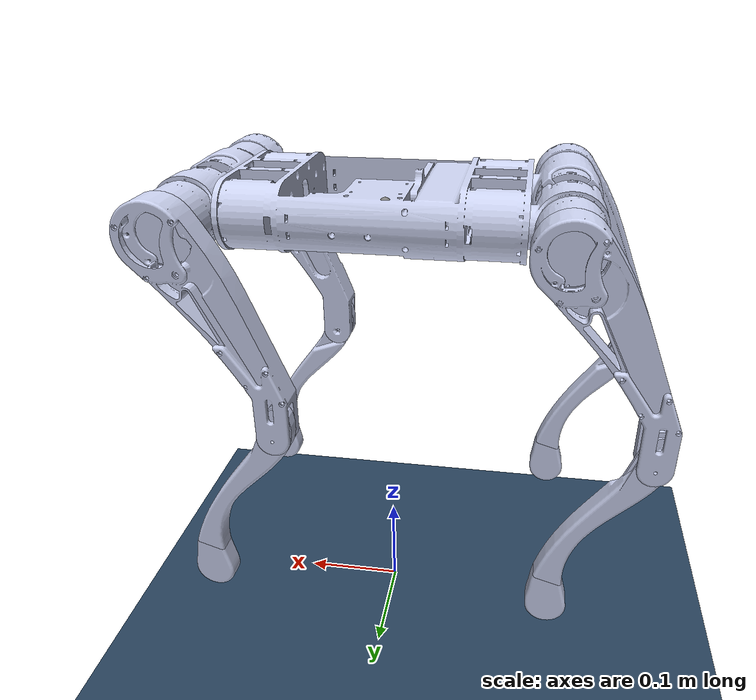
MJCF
<mujoco model="Little white scene">
  <include file="little_white_fix.xml"/>

  <statistic center="0 0 0.1" extent="0.8"/>

  <visual>
    <headlight diffuse="0.6 0.6 0.6" ambient="0.3 0.3 0.3" specular="0 0 0"/>
    <rgba haze="0.15 0.25 0.35 1"/>
    <global azimuth="-130" elevation="-20"/>
  </visual>

  <asset>
    <texture type="skybox" builtin="gradient" rgb1="0.3 0.5 0.7" rgb2="0 0 0" width="512" height="3072"/>
    <texture type="2d" name="groundplane" builtin="checker" mark="edge" rgb1="0.2 0.3 0.4" rgb2="0.1 0.2 0.3"
      markrgb="0.8 0.8 0.8" width="300" height="300"/>
    <material name="groundplane" texture="groundplane" texuniform="true" texrepeat="5 5" reflectance="0.2"/>
  </asset>

  <worldbody>
    <light pos="0 0 1.5" dir="0 0 -1" directional="true"/>
    <geom name="floor" size="0 0 0.05" type="plane" material="groundplane"/>

  </worldbody>
</mujoco>

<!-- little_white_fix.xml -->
<mujoco model="littlewhite">
  <compiler angle="radian" meshdir="/Users/uie47061/Documents/UROP/sim2sim_mujoco/meshes"/>

  <default>
    <default class="little_white">
      <geom friction="0.4" margin="0.001" condim="1"/>
      <joint axis="0 1 0" frictionloss="0.2"/>
      <motor ctrlrange="-23.7 23.7"/>
      <default class="abduction">
        <joint axis="1 0 0" range="-1.0472 1.0472" damping="0.38" armature="0.001"/>
      </default>
      <default class="hip">
        <default class="front_hip">
          <joint range="-1.5708 1.5708" damping="0.29" armature="0.0027"/>
        </default>
        <default class="back_hip">
          <joint range="-1.5708 1.5708" damping="0.29" armature="0.0027"/>
        </default>
      </default>
      <default class="knee">
        <joint range="-1.91 0.0" damping="0.22" armature="0.0058"/>
        <motor ctrlrange="-45.43 45.43"/>
      </default>
      <default class="visual">
        <geom type="mesh" contype="0" conaffinity="0" group="2"/>
      </default>
      <default class="collision">
        <geom group="3"/>
        <default class="foot">
          <geom size="0.022" pos="-0.002 0 -0.213" priority="1" condim="3"
            friction="0.4 0.02 0.01"/>
        </default>
      </default>
    </default>
  </default>
  <asset>
    <mesh name="base_link" file="base_link.STL"/>
    <mesh name="base_link_collision" file="base_link_collision.stl"/>
    <mesh name="FL_hip_link" file="FL_hip_link.STL"/>
    <mesh name="FL_hip_collision" file="FL_hip_collision.stl"/>
    <mesh name="FL_thigh_link" file="FL_thigh_link.STL"/>
    <mesh name="FL_thigh_collision" file="FL_thigh_collision.stl"/>
    <mesh name="FL_calf_link" file="FL_calf_link.STL"/>
    <mesh name="FL_calf_collision" file="FL_calf_collision.stl"/>
    <mesh name="FL_paw_link" file="FL_paw_link.STL"/>
    <mesh name="FL_paw_collision" file="FL_paw_collision.stl"/>
    <mesh name="FR_hip_link" file="FR_hip_link.STL"/>
    <mesh name="FR_hip_collision" file="FR_hip_collision.stl"/>
    <mesh name="FR_thigh_link" file="FR_thigh_link.STL"/>
    <mesh name="FR_thigh_collision" file="FR_thigh_collision.stl"/>
    <mesh name="FR_calf_link" file="FR_calf_link.STL"/>
    <mesh name="FR_calf_collision" file="FR_calf_collision.stl"/>
    <mesh name="FR_paw_link" file="FR_paw_link.STL"/>
    <mesh name="RL_hip_link" file="RL_hip_link.STL"/>
    <mesh name="RL_hip_collision" file="RL_hip_collision.stl"/>
    <mesh name="RL_thigh_link" file="RL_thigh_link.STL"/>
    <mesh name="RL_calf_link" file="RL_calf_link.STL"/>
    <mesh name="RL_paw_link" file="RL_paw_link.STL"/>
    <mesh name="RR_hip_link" file="RR_hip_link.STL"/>
    <mesh name="RR_hip_collision" file="RR_hip_collision.stl"/>
    <mesh name="RR_thigh_link" file="RR_thigh_link.STL"/>
    <mesh name="RR_calf_link" file="RR_calf_link.STL"/>
    <mesh name="RR_paw_link" file="RR_paw_link.STL"/>
  </asset>

  <worldbody>
    <body name="base_link" pos="0 0 0.445" childclass="little_white" >
      <inertial pos="-0.01204342 -0.00011397 -0.00061410" quat="1 0 0 0"
        mass="2.0"
        diaginertia="0.00509927 0.01393531 0.01818843" />
      <freejoint />
      <geom type="mesh" contype="0" conaffinity="0" group="1" density="0" rgba="0.792157 0.819608 0.933333 1" mesh="base_link"/>
      <geom type="mesh" rgba="0.792157 0.819608 0.933333 1" mesh="base_link_collision" class="collision"/>
      <site name="imu" pos="0 0 0" />
      <body name="FL_hip_link" pos="0.1234 0.0510661 0">
        <inertial pos="0.0333133 0.00218418 -3.895e-05" quat="0.502451 0.491407 -0.503372 0.502672" mass="0.3" diaginertia="0.000284894 0.000263419 0.000178087"/>
        <joint name="FL_hip_joint" class="abduction"/>
        <geom type="mesh" contype="0" conaffinity="0" group="1" density="0" rgba="0.792157 0.819608 0.933333 1" mesh="FL_hip_link"/>
        <geom type="mesh" rgba="0.792157 0.819608 0.933333 1" mesh="FL_hip_collision" class="collision"/>
        <body name="FL_thigh_link" pos="0.0365 0.0595339 0">
          <inertial pos="-0.049488 0.00014953 -0.0849763" quat="0.680655 0.155332 0.164482 0.696797" mass="0.48" diaginertia="0.00215888 0.00206806 0.000157681"/>
          <joint name="FL_thigh_joint" class="front_hip"/>
          <geom type="mesh" contype="0" conaffinity="0" group="1" density="0" rgba="0.792157 0.819608 0.933333 1" mesh="FL_thigh_link"/>
          <geom type="mesh" rgba="0.792157 0.819608 0.933333 1" mesh="FL_thigh_collision" class="collision"/>
          <body name="FL_calf_link" pos="-0.079798 0.00571 -0.177735">
            <inertial pos="0.0500631 -0.00396519 -0.0818502" quat="0.699002 -0.169526 -0.165578 0.674716" mass="0.05" diaginertia="0.000209137 0.000203789 8.67142e-06"/>
            <joint name="FL_calf_joint" class="knee"/>
            <geom type="mesh" contype="0" conaffinity="0" group="1" density="0" rgba="0.792157 0.819608 0.933333 1" mesh="FL_calf_link"/>
            <geom type="mesh" rgba="0.792157 0.819608 0.933333 1" mesh="FL_calf_collision" class="collision"/>
            <geom pos="0.0808649 -0.00455 -0.135562" quat="0.707108 0 0 -0.707106" type="mesh" contype="0" conaffinity="0" group="1" density="0" rgba="0.792157 0.819608 0.933333 1" mesh="FL_paw_link"/>
            <geom pos="0.0808649 -0.00455 -0.135562" quat="0.707108 0 0 -0.707106" type="mesh" rgba="0.792157 0.819608 0.933333 1" mesh="FL_paw_collision" class="collision"/>
          </body>
        </body>
      </body>
      <body name="FR_hip_link" pos="0.1234 -0.0509339 0">
        <inertial pos="0.0276363 0.00800779 -7.06e-06" quat="0.420116 0.347689 0.614895 0.569666" mass="0.3" diaginertia="0.000243694 0.000241965 0.000180311"/>
        <joint name="FR_hip_joint" class="abduction"/>
        <geom type="mesh" contype="0" conaffinity="0" group="1" density="0" rgba="0.792157 0.819608 0.933333 1" mesh="FR_hip_link"/>
        <geom type="mesh" rgba="0.792157 0.819608 0.933333 1" mesh="FR_hip_collision" class="collision"/>
        <body name="FR_thigh_link" pos="0.0365 -0.0596661 0">
          <inertial pos="-0.0494894 -0.00014939 -0.0849756" quat="0.696857 0.164457 0.155336 0.680599" mass="0.48" diaginertia="0.00215877 0.002068 0.00015763"/>
          <joint name="FR_thigh_joint" class="front_hip"/>
          <geom type="mesh" contype="0" conaffinity="0" group="1" density="0" rgba="0.792157 0.819608 0.933333 1" mesh="FR_thigh_link"/>
          <geom type="mesh" rgba="0.792157 0.819608 0.933333 1" mesh="FR_thigh_collision" class="collision"/>
          <body name="FR_calf_link" pos="-0.079798 -0.00571 -0.177735">
            <inertial pos="0.0500641 0.00396654 -0.0818502" quat="0.674957 -0.165521 -0.169591 0.698767" mass="0.05" diaginertia="0.000209137 0.000203799 8.67242e-06"/>
            <joint name="FR_calf_joint" class="knee"/>
            <geom type="mesh" contype="0" conaffinity="0" group="1" density="0" rgba="0.792157 0.819608 0.933333 1" mesh="FR_calf_link"/>
            <geom type="mesh" rgba="0.792157 0.819608 0.933333 1" mesh="FR_calf_collision" class="collision"/>
            <geom pos="0.0808737 0.00455 -0.135559" quat="1 0 0 0" type="mesh" contype="0" conaffinity="0" group="1" density="0" rgba="0.792157 0.819608 0.933333 1" mesh="FR_paw_link"/>
            <geom pos="0.0808737 0.00455 -0.135559" quat="1 0 0 0" type="mesh" rgba="0.792157 0.819608 0.933333 1" mesh="FL_paw_collision" class="collision"/>
          </body>
        </body>
      </body>
      <body name="RL_hip_link" pos="-0.1234 0.0510661 0">
        <inertial pos="-0.0334887 0.00218418 -0.00018813" quat="0.489831 0.501572 -0.501905 0.50654" mass="0.3" diaginertia="0.000285202 0.000263427 0.000178392"/>
        <joint name="RL_hip_joint" class="abduction"/>
        <geom type="mesh" contype="0" conaffinity="0" group="1" density="0" rgba="0.792157 0.819608 0.933333 1" mesh="RL_hip_link"/>
        <geom type="mesh" rgba="0.792157 0.819608 0.933333 1" mesh="RL_hip_collision" class="collision"/>
        <body name="RL_thigh_link" pos="-0.0365 0.0595339 0">
          <inertial pos="-0.0519249 0.00014953 -0.0835095" quat="0.678202 0.165396 0.174306 0.69448" mass="0.48" diaginertia="0.00215889 0.00206807 0.000157679"/>
          <joint name="RL_thigh_joint" class="back_hip"/>
          <geom type="mesh" contype="0" conaffinity="0" group="1" density="0" rgba="0.792157 0.819608 0.933333 1" mesh="RL_thigh_link"/>
          <geom type="mesh" rgba="0.792157 0.819608 0.933333 1" mesh="FL_thigh_collision" class="collision"/>
          <body name="RL_calf_link" pos="-0.0845699 0.00571 -0.175356">
            <inertial pos="0.0468304 -0.00396639 -0.0835506" quat="0.702181 -0.158127 -0.154021 0.676916" mass="0.05" diaginertia="0.000209137 0.000204224 8.24673e-06"/>
            <joint name="RL_calf_joint" class="knee"/>
            <geom type="mesh" contype="0" conaffinity="0" group="1" density="0" rgba="0.792157 0.819608 0.933333 1" mesh="RL_calf_link"/>
            <geom type="mesh" rgba="0.792157 0.819608 0.933333 1" mesh="FL_calf_collision" class="collision"/>
            <geom pos="0.0757393 -0.00455 -0.138307" quat="1 0 0 0" type="mesh" contype="0" conaffinity="0" group="1" density="0" rgba="0.792157 0.819608 0.933333 1" mesh="RL_paw_link"/>
            <geom pos="0.0757393 -0.00455 -0.138307" quat="1 0 0 0" type="mesh" rgba="0.792157 0.819608 0.933333 1" mesh="FL_paw_collision" class="collision"/>
          </body>
        </body>
      </body>
      <body name="RR_hip_link" pos="-0.1234 -0.0509339 0">
        <inertial pos="-0.0276716 0.00800779 -3.868e-05" quat="0.596089 0.589502 0.388998 0.381898" mass="0.3" diaginertia="0.000243679 0.00024218 0.00018049"/>
        <joint name="RR_hip_joint" class="abduction"/>
        <geom type="mesh" contype="0" conaffinity="0" group="1" density="0" rgba="0.792157 0.819608 0.933333 1" mesh="RR_hip_link"/>
        <geom type="mesh" rgba="0.792157 0.819608 0.933333 1" mesh="RR_hip_collision" class="collision"/>
        <body name="RR_thigh_link" pos="-0.0365 -0.0596661 0">
          <inertial pos="-0.0519261 -0.00014945 -0.0835081" quat="0.694559 0.174275 0.165407 0.678127" mass="0.48" diaginertia="0.0021588 0.00206804 0.000157622"/>
          <joint name="RR_thigh_joint" class="back_hip"/>
          <geom type="mesh" contype="0" conaffinity="0" group="1" density="0" rgba="0.792157 0.819608 0.933333 1" mesh="RR_thigh_link"/>
          <geom type="mesh" rgba="0.792157 0.819608 0.933333 1" mesh="FR_thigh_collision" class="collision"/>
          <body name="RR_calf_link" pos="-0.0849051 -0.00571 -0.175353">
            <inertial pos="0.0471655 0.00396654 -0.083554" quat="0.676915 -0.154022 -0.158127 0.702182" mass="0.05" diaginertia="0.000209137 0.000204224 8.24662e-06"/>
            <joint name="RR_calf_joint" class="knee"/>
            <geom type="mesh" contype="0" conaffinity="0" group="1" density="0" rgba="0.792157 0.819608 0.933333 1" mesh="RR_calf_link"/>
            <geom type="mesh" rgba="0.792157 0.819608 0.933333 1" mesh="FR_calf_collision" class="collision"/>
            <geom pos="0.0760744 0.00455 -0.13831" quat="1 0 0 0" type="mesh" contype="0" conaffinity="0" group="1" density="0" rgba="0.792157 0.819608 0.933333 1" mesh="RR_paw_link"/>
            <geom pos="0.0760744 0.00455 -0.13831" quat="1 0 0 0" type="mesh" rgba="0.792157 0.819608 0.933333 1" mesh="FL_paw_collision" class="collision"/>
          </body>
        </body>
      </body>
    </body>
  </worldbody>

  <actuator>
    <motor class="abduction" name="FL_hip" joint="FL_hip_joint" />
    <motor class="abduction" name="FR_hip" joint="FR_hip_joint" />
    <motor class="abduction" name="RL_hip" joint="RL_hip_joint" />
    <motor class="abduction" name="RR_hip" joint="RR_hip_joint" />
    <motor class="hip" name="FL_thigh" joint="FL_thigh_joint" />
    <motor class="hip" name="FR_thigh" joint="FR_thigh_joint" />
    <motor class="hip" name="RL_thigh" joint="RL_thigh_joint" />
    <motor class="hip" name="RR_thigh" joint="RR_thigh_joint" />
    <motor class="knee" name="FL_calf" joint="FL_calf_joint" />
    <motor class="knee" name="FR_calf" joint="FR_calf_joint" />
    <motor class="knee" name="RL_calf" joint="RL_calf_joint" />
    <motor class="knee" name="RR_calf" joint="RR_calf_joint" />
  </actuator>

  <sensor>
    <jointpos name="FL_hip_pos" joint="FL_hip_joint" />
    <jointpos name="FR_hip_pos" joint="FR_hip_joint" />
    <jointpos name="RL_hip_pos" joint="RL_hip_joint" />
    <jointpos name="RR_hip_pos" joint="RR_hip_joint" />
    <jointpos name="FL_thigh_pos" joint="FL_thigh_joint" />
    <jointpos name="FR_thigh_pos" joint="FR_thigh_joint" />
    <jointpos name="RL_thigh_pos" joint="RL_thigh_joint" />
    <jointpos name="RR_thigh_pos" joint="RR_thigh_joint" />
    <jointpos name="FL_calf_pos" joint="FL_calf_joint" />
    <jointpos name="FR_calf_pos" joint="FR_calf_joint" />
    <jointpos name="RL_calf_pos" joint="RL_calf_joint" />
    <jointpos name="RR_calf_pos" joint="RR_calf_joint" />

    <jointvel name="FL_hip_vel" joint="FL_hip_joint" />
    <jointvel name="FR_hip_vel" joint="FR_hip_joint" />
    <jointvel name="RL_hip_vel" joint="RL_hip_joint" />
    <jointvel name="RR_hip_vel" joint="RR_hip_joint" />
    <jointvel name="FL_thigh_vel" joint="FL_thigh_joint" />
    <jointvel name="FR_thigh_vel" joint="FR_thigh_joint" />
    <jointvel name="RL_thigh_vel" joint="RL_thigh_joint" />
    <jointvel name="RR_thigh_vel" joint="RR_thigh_joint" />
    <jointvel name="FL_calf_vel" joint="FL_calf_joint" />
    <jointvel name="FR_calf_vel" joint="FR_calf_joint" />
    <jointvel name="RL_calf_vel" joint="RL_calf_joint" />
    <jointvel name="RR_calf_vel" joint="RR_calf_joint" />

    <jointactuatorfrc name="FL_hip_torque" joint="FL_hip_joint" noise="0.01" />
    <jointactuatorfrc name="FR_hip_torque" joint="FR_hip_joint" noise="0.01" />
    <jointactuatorfrc name="RL_hip_torque" joint="RL_hip_joint" noise="0.01" />
    <jointactuatorfrc name="RR_hip_torque" joint="RR_hip_joint" noise="0.01" />
    <jointactuatorfrc name="FL_thigh_torque" joint="FL_thigh_joint" noise="0.01" />
    <jointactuatorfrc name="FR_thigh_torque" joint="FR_thigh_joint" noise="0.01" />
    <jointactuatorfrc name="RL_thigh_torque" joint="RL_thigh_joint" noise="0.01" />
    <jointactuatorfrc name="RR_thigh_torque" joint="RR_thigh_joint" noise="0.01" />
    <jointactuatorfrc name="FL_calf_torque" joint="FL_calf_joint" noise="0.01" />
    <jointactuatorfrc name="FR_calf_torque" joint="FR_calf_joint" noise="0.01" />
    <jointactuatorfrc name="RL_calf_torque" joint="RL_calf_joint" noise="0.01" />
    <jointactuatorfrc name="RR_calf_torque" joint="RR_calf_joint" noise="0.01" />

    <framequat name="imu_quat" objtype="site" objname="imu" />
    <gyro name="imu_gyro" site="imu" />
    <accelerometer name="imu_acc" site="imu" />

    <framepos name="frame_pos" objtype="site" objname="imu" />
    <framelinvel name="frame_vel" objtype="site" objname="imu" />
  </sensor>

</mujoco>
